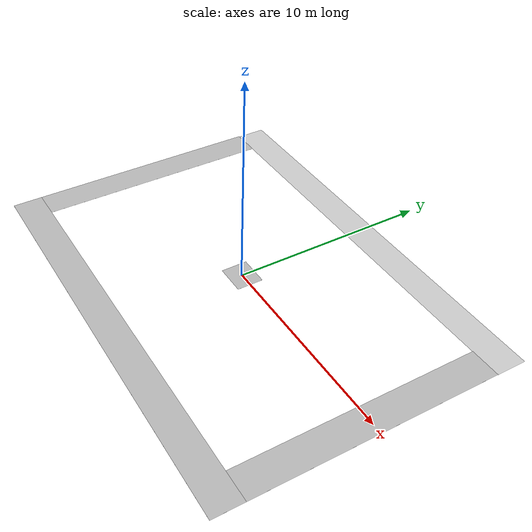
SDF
<?xml version="1.0" ?>
<sdf version="1.4">
  <model name="soccer_field">
    <static>true</static>

    <link name="chassis">
      <pose>0 0 0.01 0 0 0</pose>
      <collision name="collision">
        <geometry>
          <plane>
            <normal>0 0 1</normal>
            <size>1.5 1.3</size>
          </plane>
        </geometry>
        <surface>
          <friction>
            <ode>
              <mu>1</mu>
              <mu2>1</mu2>
            </ode>
          </friction>
        </surface>
      </collision>

      <visual name="carpet">
        <cast_shadows>false</cast_shadows>
        <geometry>
          <plane>
            <normal>0 0 1</normal>
            <size>1.5 1.3</size>
          </plane>
        </geometry>
        <material>
          <script>
            <uri>file://materials/scripts/</uri>
            <uri>file://materials/textures/</uri>
            <name>RoboCup/Carpet</name>
          </script>
        </material>
      </visual>

       <visual name="base1">
        <pose>0 6.75 0.01 0 0 0</pose>
        <cast_shadows>false</cast_shadows>
        <geometry>
          <plane>
            <normal>0 0 1</normal>
            <size>21.0 1.5</size>
          </plane>
        </geometry>
        <material>
          <script>
            <uri>file://materials/scripts/</uri>
            <uri>file://materials/textures/</uri>
            <name>RoboCup/FieldBorder</name>
          </script>
        </material>
      </visual>
      <visual name="base2">
        <pose>0 -6.75 0.01 0 0 0</pose>
        <cast_shadows>false</cast_shadows>
        <geometry>
          <plane>
            <normal>0 0 1</normal>
            <size>21.0 1.5</size>
          </plane>
        </geometry>
        <material>
          <script>
            <uri>file://materials/scripts/</uri>
            <uri>file://materials/textures/</uri>
            <name>RoboCup/FieldBorder</name>
          </script>
        </material>
      </visual>
      <visual name="base3">
        <pose>9.75 0 0.01 0 0 0</pose>
        <cast_shadows>false</cast_shadows>
        <geometry>
          <plane>
            <normal>0 0 1</normal>
            <size>1.5 12.0</size>
          </plane>
        </geometry>
        <material>
          <script>
            <uri>file://materials/scripts/</uri>
            <uri>file://materials/textures/</uri>
            <name>RoboCup/FieldBorder</name>
          </script>
        </material>
      </visual>
      <visual name="base4">
        <pose>-9.75 0 0.01 0 0 0</pose>
        <cast_shadows>false</cast_shadows>
        <geometry>
          <plane>
            <normal>0 0 1</normal>
            <size>1.5 12.0</size>
          </plane>
        </geometry>
        <material>
          <script>
            <uri>file://materials/scripts/</uri>
            <uri>file://materials/textures/</uri>
            <name>RoboCup/FieldBorder</name>
          </script>
        </material>
      </visual>
    </link>

  </model>
</sdf>
